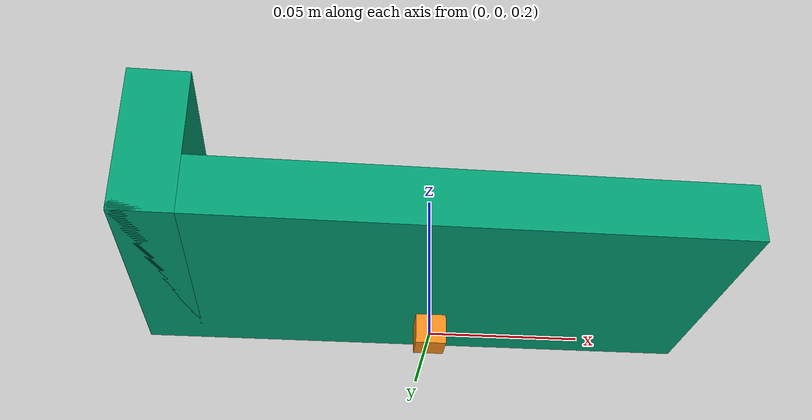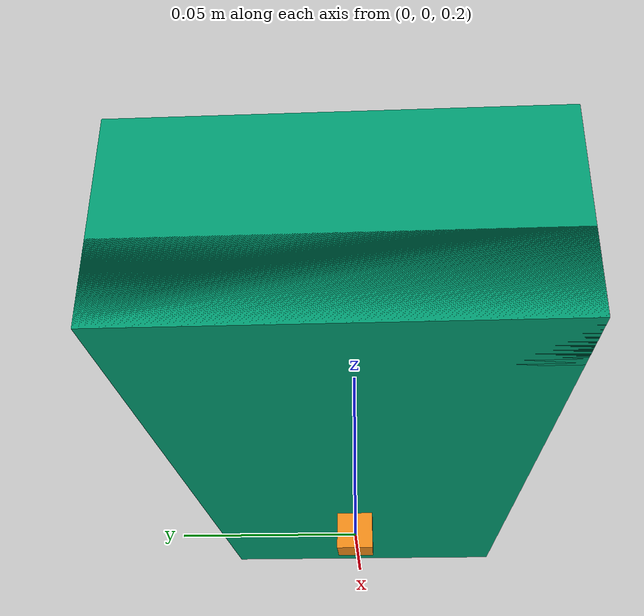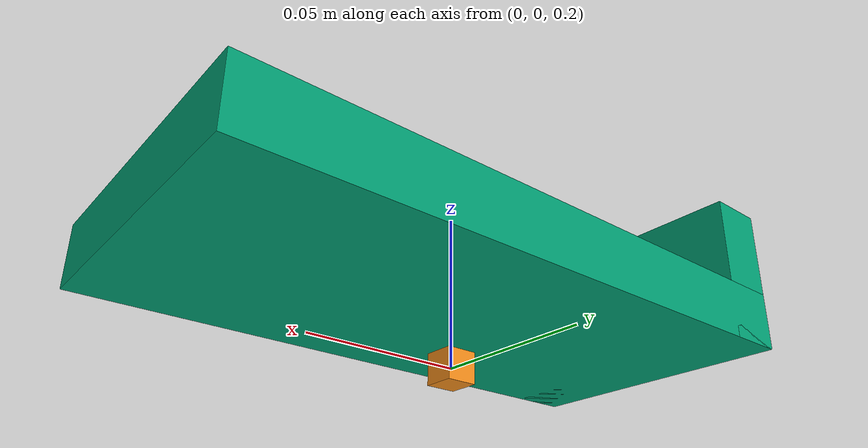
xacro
<?xml version="1.0"?>
<robot name="slider" xmlns:xacro="http://www.ros.org/wiki/xacro">

  <xacro:include filename="$(find planar_folding_assembly)/urdf/constants.urdf.xacro"/>

  <xacro:property name="receptacle_w" value="0.02" />
  <xacro:property name="receptacle_l" value="0.2" />
  <xacro:property name="receptacle_h" value="0.05" />

  <xacro:property name="handle_distance" value="0.01" />

  <link name="world" />

  <joint name="base_receptacle_joint" type="fixed">

    <origin xyz="0 0 0.2" />
    <parent link="world" />
    <child link="receptacle_handle" />

  </joint>

  <link name="receptacle_handle" >

    <collision>
      <geometry>
        <box size="${handle_size} ${handle_size} ${handle_size}" />
      </geometry>
    </collision>

    <visual>
      <geometry>
        <box size="${handle_size} ${handle_size} ${handle_size}" />
      </geometry>
      <material name="orange"/>
    </visual>

    <inertial>
      <mass value="${handle_mass}"/>
      <inertia
        ixx="1.0" ixy="0.0" ixz="0.0"
        iyy="1.0" iyz="0.0"
        izz="1.0"/>
    </inertial>

  </link>

  <joint name="receptacle_joint" type="revolute">

    <origin xyz="0 0 ${handle_distance+handle_size/2}" />
    <parent link="receptacle_handle" />
    <child link="receptacle" />
    <limit lower="0" upper="0" velocity="1" effort="1" />

  </joint>

  <link name="receptacle">

    <collision>
      <origin xyz="0 0 ${receptacle_w/2}" />
      <geometry>
        <box size="${receptacle_l} ${objects_depth} ${receptacle_w}" />
      </geometry>
    </collision>
    <collision>
      <origin xyz="${-receptacle_l/2 + receptacle_w/2} 0 ${receptacle_h/2}" />
      <geometry>
        <box size="${receptacle_w} ${objects_depth} ${receptacle_h}" />
      </geometry>
    </collision>

    <visual>
      <origin xyz="0 0 ${receptacle_w/2}" />
      <geometry>
        <box size="${receptacle_l} ${objects_depth} ${receptacle_w}" />
      </geometry>
    </visual>
    <visual>
      <origin xyz="${-receptacle_l/2 + receptacle_w/2} 0 ${receptacle_h/2}" />
      <geometry>
        <box size="${receptacle_w} ${objects_depth} ${receptacle_h}" />
      </geometry>
    </visual>

    <inertial>
      <origin xyz="0 0 ${receptacle_h/2}" />
      <mass value="1"/>
      <inertia
        ixx="1.0" ixy="0.0" ixz="0.0"
        iyy="1.0" iyz="0.0"
        izz="1.0"/>
    </inertial>

  </link>

  <gazebo reference="receptacle">
    <mu1>0.0</mu1>
    <mu2>0.0</mu2>
  </gazebo>

</robot>

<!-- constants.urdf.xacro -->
<robot name="planar_folding_assembly_slider" xmlns:xacro="http://www.ros.org/wiki/xacro">

  <xacro:property name="objects_depth" value="0.1" />

  <xacro:property name="handle_size" value="0.01" />
  <xacro:property name="handle_mass" value="0.01" />

  <xacro:property name="pi" value="3.1415926535897931" />

</robot>
